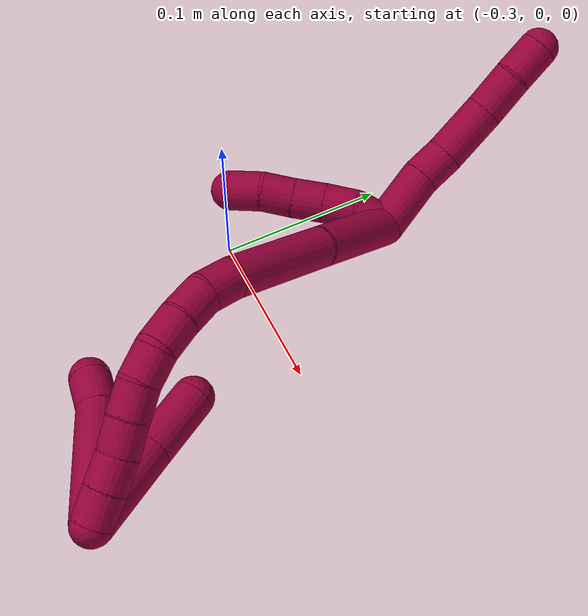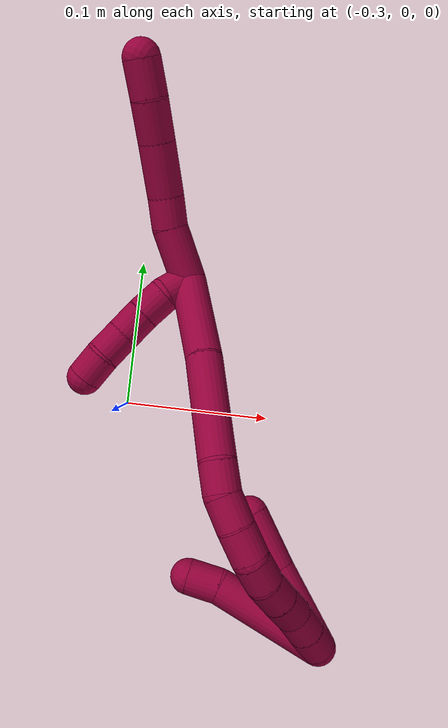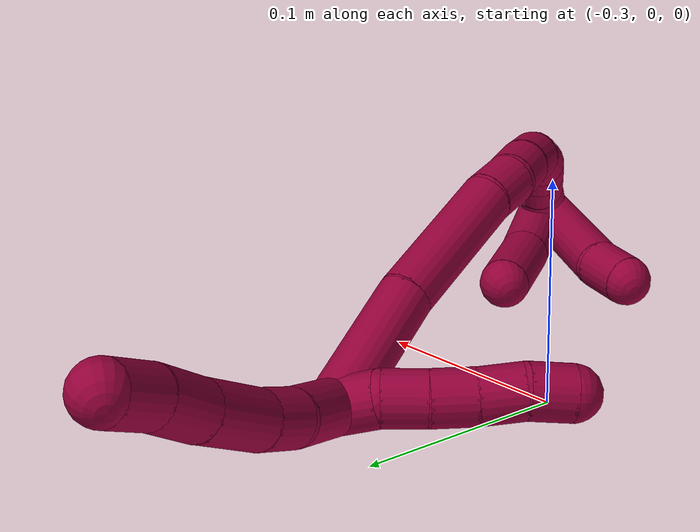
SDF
<sdf version="1.7">
 <world name="default">
  <model name="8">
   <static>0</static>
   <link name="8">
    <collision name="collision-cylinder-e_1_2_8">
     <pose>0.003568 0.014576 0.012643 -0.856297 0.182869 -0.083643</pose>
     <geometry><cylinder><radius>0.0125</radius><length>0.039243</length></cylinder></geometry>
     <surface>
      <friction><ode><mu>1.16</mu><mu2>1.16</mu2><slip1>0</slip1><slip2>0</slip2></ode></friction>
      <contact><ode><kp>1e+06</kp><kd>1</kd><max_vel>0</max_vel><min_depth>0.001</min_depth></ode></contact>
     </surface>
    </collision>
    <visual name="visual-cylinder-e_1_2_8">
     <pose>0.003568 0.014576 0.012643 -0.856297 0.182869 -0.083643</pose>
     <geometry><cylinder><radius>0.0125</radius><length>0.039243</length></cylinder></geometry>
     <material><ambient>0.584314 0 0.227451 1</ambient></material>
    </visual>
    <collision name="collision-cylinder-e_2_8_9">
     <pose>0.008685 0.038349 0.030376 -1.06524 0.146267 -0.086316</pose>
     <geometry><cylinder><radius>0.0125</radius><length>0.021252</length></cylinder></geometry>
     <surface>
      <friction><ode><mu>1.16</mu><mu2>1.16</mu2><slip1>0</slip1><slip2>0</slip2></ode></friction>
      <contact><ode><kp>1e+06</kp><kd>1</kd><max_vel>0</max_vel><min_depth>0.001</min_depth></ode></contact>
     </surface>
    </collision>
    <visual name="visual-cylinder-e_2_8_9">
     <pose>0.008685 0.038349 0.030376 -1.06524 0.146267 -0.086316</pose>
     <geometry><cylinder><radius>0.0125</radius><length>0.021252</length></cylinder></geometry>
     <material><ambient>0.584314 0 0.227451 1</ambient></material>
    </visual>
    <collision name="collision-cylinder-e_3_9_10">
     <pose>0.015387 0.063333 0.043565 -1.09687 0.282665 -0.173419</pose>
     <geometry><cylinder><radius>0.0125</radius><length>0.036952</length></cylinder></geometry>
     <surface>
      <friction><ode><mu>1.16</mu><mu2>1.16</mu2><slip1>0</slip1><slip2>0</slip2></ode></friction>
      <contact><ode><kp>1e+06</kp><kd>1</kd><max_vel>0</max_vel><min_depth>0.001</min_depth></ode></contact>
     </surface>
    </collision>
    <visual name="visual-cylinder-e_3_9_10">
     <pose>0.015387 0.063333 0.043565 -1.09687 0.282665 -0.173419</pose>
     <geometry><cylinder><radius>0.0125</radius><length>0.036952</length></cylinder></geometry>
     <material><ambient>0.584314 0 0.227451 1</ambient></material>
    </visual>
    <collision name="collision-cylinder-e_4_10_11">
     <pose>0.025289 0.090806 0.057279 -1.12274 0.351085 -0.22216</pose>
     <geometry><cylinder><radius>0.0125</radius><length>0.027615</length></cylinder></geometry>
     <surface>
      <friction><ode><mu>1.16</mu><mu2>1.16</mu2><slip1>0</slip1><slip2>0</slip2></ode></friction>
      <contact><ode><kp>1e+06</kp><kd>1</kd><max_vel>0</max_vel><min_depth>0.001</min_depth></ode></contact>
     </surface>
    </collision>
    <visual name="visual-cylinder-e_4_10_11">
     <pose>0.025289 0.090806 0.057279 -1.12274 0.351085 -0.22216</pose>
     <geometry><cylinder><radius>0.0125</radius><length>0.027615</length></cylinder></geometry>
     <material><ambient>0.584314 0 0.227451 1</ambient></material>
    </visual>
    <collision name="collision-cylinder-e_5_11_6">
     <pose>0.033101 0.112972 0.068916 -1.04943 0.248267 -0.144199</pose>
     <geometry><cylinder><radius>0.0125</radius><length>0.024938</length></cylinder></geometry>
     <surface>
      <friction><ode><mu>1.16</mu><mu2>1.16</mu2><slip1>0</slip1><slip2>0</slip2></ode></friction>
      <contact><ode><kp>1e+06</kp><kd>1</kd><max_vel>0</max_vel><min_depth>0.001</min_depth></ode></contact>
     </surface>
    </collision>
    <visual name="visual-cylinder-e_5_11_6">
     <pose>0.033101 0.112972 0.068916 -1.04943 0.248267 -0.144199</pose>
     <geometry><cylinder><radius>0.0125</radius><length>0.024938</length></cylinder></geometry>
     <material><ambient>0.584314 0 0.227451 1</ambient></material>
    </visual>
    <collision name="collision-cylinder-e_1_2_12">
     <pose>0.006393 -0.006673 0.003822 1.05065 0.693588 0.413002</pose>
     <geometry><cylinder><radius>0.0125</radius><length>0.02</length></cylinder></geometry>
     <surface>
      <friction><ode><mu>1.16</mu><mu2>1.16</mu2><slip1>0</slip1><slip2>0</slip2></ode></friction>
      <contact><ode><kp>1e+06</kp><kd>1</kd><max_vel>0</max_vel><min_depth>0.001</min_depth></ode></contact>
     </surface>
    </collision>
    <visual name="visual-cylinder-e_1_2_12">
     <pose>0.006393 -0.006673 0.003822 1.05065 0.693588 0.413002</pose>
     <geometry><cylinder><radius>0.0125</radius><length>0.02</length></cylinder></geometry>
     <material><ambient>0.584314 0 0.227451 1</ambient></material>
    </visual>
    <collision name="collision-cylinder-e_2_12_13">
     <pose>0.01684 -0.021963 0.010692 1.23081 0.417426 0.297272</pose>
     <geometry><cylinder><radius>0.0125</radius><length>0.02</length></cylinder></geometry>
     <surface>
      <friction><ode><mu>1.16</mu><mu2>1.16</mu2><slip1>0</slip1><slip2>0</slip2></ode></friction>
      <contact><ode><kp>1e+06</kp><kd>1</kd><max_vel>0</max_vel><min_depth>0.001</min_depth></ode></contact>
     </surface>
    </collision>
    <visual name="visual-cylinder-e_2_12_13">
     <pose>0.01684 -0.021963 0.010692 1.23081 0.417426 0.297272</pose>
     <geometry><cylinder><radius>0.0125</radius><length>0.02</length></cylinder></geometry>
     <material><ambient>0.584314 0 0.227451 1</ambient></material>
    </visual>
    <collision name="collision-cylinder-e_3_13_14">
     <pose>0.02502 -0.039394 0.016044 1.31509 0.4253 0.330411</pose>
     <geometry><cylinder><radius>0.0125</radius><length>0.02</length></cylinder></geometry>
     <surface>
      <friction><ode><mu>1.16</mu><mu2>1.16</mu2><slip1>0</slip1><slip2>0</slip2></ode></friction>
      <contact><ode><kp>1e+06</kp><kd>1</kd><max_vel>0</max_vel><min_depth>0.001</min_depth></ode></contact>
     </surface>
    </collision>
    <visual name="visual-cylinder-e_3_13_14">
     <pose>0.02502 -0.039394 0.016044 1.31509 0.4253 0.330411</pose>
     <geometry><cylinder><radius>0.0125</radius><length>0.02</length></cylinder></geometry>
     <material><ambient>0.584314 0 0.227451 1</ambient></material>
    </visual>
    <collision name="collision-cylinder-e_4_14_15">
     <pose>0.033971 -0.056719 0.020415 1.33259 0.503472 0.399049</pose>
     <geometry><cylinder><radius>0.0125</radius><length>0.02</length></cylinder></geometry>
     <surface>
      <friction><ode><mu>1.16</mu><mu2>1.16</mu2><slip1>0</slip1><slip2>0</slip2></ode></friction>
      <contact><ode><kp>1e+06</kp><kd>1</kd><max_vel>0</max_vel><min_depth>0.001</min_depth></ode></contact>
     </surface>
    </collision>
    <visual name="visual-cylinder-e_4_14_15">
     <pose>0.033971 -0.056719 0.020415 1.33259 0.503472 0.399049</pose>
     <geometry><cylinder><radius>0.0125</radius><length>0.02</length></cylinder></geometry>
     <material><ambient>0.584314 0 0.227451 1</ambient></material>
    </visual>
    <collision name="collision-cylinder-e_5_15_5">
     <pose>0.041698 -0.07459 0.024476 1.36084 0.294523 0.238969</pose>
     <geometry><cylinder><radius>0.0125</radius><length>0.02</length></cylinder></geometry>
     <surface>
      <friction><ode><mu>1.16</mu><mu2>1.16</mu2><slip1>0</slip1><slip2>0</slip2></ode></friction>
      <contact><ode><kp>1e+06</kp><kd>1</kd><max_vel>0</max_vel><min_depth>0.001</min_depth></ode></contact>
     </surface>
    </collision>
    <visual name="visual-cylinder-e_5_15_5">
     <pose>0.041698 -0.07459 0.024476 1.36084 0.294523 0.238969</pose>
     <geometry><cylinder><radius>0.0125</radius><length>0.02</length></cylinder></geometry>
     <material><ambient>0.584314 0 0.227451 1</ambient></material>
    </visual>
    <collision name="collision-cylinder-e_1_2_16">
     <pose>0.017366 -0.015943 -0.021833 2.51088 0.570976 1.46525</pose>
     <geometry><cylinder><radius>0.0125</radius><length>0.064263</length></cylinder></geometry>
     <surface>
      <friction><ode><mu>1.16</mu><mu2>1.16</mu2><slip1>0</slip1><slip2>0</slip2></ode></friction>
      <contact><ode><kp>1e+06</kp><kd>1</kd><max_vel>0</max_vel><min_depth>0.001</min_depth></ode></contact>
     </surface>
    </collision>
    <visual name="visual-cylinder-e_1_2_16">
     <pose>0.017366 -0.015943 -0.021833 2.51088 0.570976 1.46525</pose>
     <geometry><cylinder><radius>0.0125</radius><length>0.064263</length></cylinder></geometry>
     <material><ambient>0.584314 0 0.227451 1</ambient></material>
    </visual>
    <collision name="collision-cylinder-e_2_16_17">
     <pose>0.052394 -0.052902 -0.06638 2.39497 0.518666 1.19074</pose>
     <geometry><cylinder><radius>0.0125</radius><length>0.071261</length></cylinder></geometry>
     <surface>
      <friction><ode><mu>1.16</mu><mu2>1.16</mu2><slip1>0</slip1><slip2>0</slip2></ode></friction>
      <contact><ode><kp>1e+06</kp><kd>1</kd><max_vel>0</max_vel><min_depth>0.001</min_depth></ode></contact>
     </surface>
    </collision>
    <visual name="visual-cylinder-e_2_16_17">
     <pose>0.052394 -0.052902 -0.06638 2.39497 0.518666 1.19074</pose>
     <geometry><cylinder><radius>0.0125</radius><length>0.071261</length></cylinder></geometry>
     <material><ambient>0.584314 0 0.227451 1</ambient></material>
    </visual>
    <collision name="collision-cylinder-e_3_17_18">
     <pose>0.073497 -0.081169 -0.095827 2.31927 0.334594 0.739047</pose>
     <geometry><cylinder><radius>0.0125</radius><length>0.020953</length></cylinder></geometry>
     <surface>
      <friction><ode><mu>1.16</mu><mu2>1.16</mu2><slip1>0</slip1><slip2>0</slip2></ode></friction>
      <contact><ode><kp>1e+06</kp><kd>1</kd><max_vel>0</max_vel><min_depth>0.001</min_depth></ode></contact>
     </surface>
    </collision>
    <visual name="visual-cylinder-e_3_17_18">
     <pose>0.073497 -0.081169 -0.095827 2.31927 0.334594 0.739047</pose>
     <geometry><cylinder><radius>0.0125</radius><length>0.020953</length></cylinder></geometry>
     <material><ambient>0.584314 0 0.227451 1</ambient></material>
    </visual>
    <collision name="collision-cylinder-e_4_18_19">
     <pose>0.077966 -0.095097 -0.111096 2.47776 0.094621 0.273025</pose>
     <geometry><cylinder><radius>0.0125</radius><length>0.021771</length></cylinder></geometry>
     <surface>
      <friction><ode><mu>1.16</mu><mu2>1.16</mu2><slip1>0</slip1><slip2>0</slip2></ode></friction>
      <contact><ode><kp>1e+06</kp><kd>1</kd><max_vel>0</max_vel><min_depth>0.001</min_depth></ode></contact>
     </surface>
    </collision>
    <visual name="visual-cylinder-e_4_18_19">
     <pose>0.077966 -0.095097 -0.111096 2.47776 0.094621 0.273025</pose>
     <geometry><cylinder><radius>0.0125</radius><length>0.021771</length></cylinder></geometry>
     <material><ambient>0.584314 0 0.227451 1</ambient></material>
    </visual>
    <collision name="collision-cylinder-e_5_19_20">
     <pose>0.078621 -0.108554 -0.127986 2.45981 -0.034731 -0.097839</pose>
     <geometry><cylinder><radius>0.0125</radius><length>0.021532</length></cylinder></geometry>
     <surface>
      <friction><ode><mu>1.16</mu><mu2>1.16</mu2><slip1>0</slip1><slip2>0</slip2></ode></friction>
      <contact><ode><kp>1e+06</kp><kd>1</kd><max_vel>0</max_vel><min_depth>0.001</min_depth></ode></contact>
     </surface>
    </collision>
    <visual name="visual-cylinder-e_5_19_20">
     <pose>0.078621 -0.108554 -0.127986 2.45981 -0.034731 -0.097839</pose>
     <geometry><cylinder><radius>0.0125</radius><length>0.021532</length></cylinder></geometry>
     <material><ambient>0.584314 0 0.227451 1</ambient></material>
    </visual>
    <collision name="collision-cylinder-e_6_20_21">
     <pose>0.074669 -0.12191 -0.143009 2.36327 -0.364908 -0.845596</pose>
     <geometry><cylinder><radius>0.0125</radius><length>0.02005</length></cylinder></geometry>
     <surface>
      <friction><ode><mu>1.16</mu><mu2>1.16</mu2><slip1>0</slip1><slip2>0</slip2></ode></friction>
      <contact><ode><kp>1e+06</kp><kd>1</kd><max_vel>0</max_vel><min_depth>0.001</min_depth></ode></contact>
     </surface>
    </collision>
    <visual name="visual-cylinder-e_6_20_21">
     <pose>0.074669 -0.12191 -0.143009 2.36327 -0.364908 -0.845596</pose>
     <geometry><cylinder><radius>0.0125</radius><length>0.02005</length></cylinder></geometry>
     <material><ambient>0.584314 0 0.227451 1</ambient></material>
    </visual>
    <collision name="collision-cylinder-e_7_21_22">
     <pose>0.065664 -0.134111 -0.155958 2.41101 -0.571952 -1.31087</pose>
     <geometry><cylinder><radius>0.0125</radius><length>0.020056</length></cylinder></geometry>
     <surface>
      <friction><ode><mu>1.16</mu><mu2>1.16</mu2><slip1>0</slip1><slip2>0</slip2></ode></friction>
      <contact><ode><kp>1e+06</kp><kd>1</kd><max_vel>0</max_vel><min_depth>0.001</min_depth></ode></contact>
     </surface>
    </collision>
    <visual name="visual-cylinder-e_7_21_22">
     <pose>0.065664 -0.134111 -0.155958 2.41101 -0.571952 -1.31087</pose>
     <geometry><cylinder><radius>0.0125</radius><length>0.020056</length></cylinder></geometry>
     <material><ambient>0.584314 0 0.227451 1</ambient></material>
    </visual>
    <collision name="collision-cylinder-e_8_22_23">
     <pose>0.054316 -0.145256 -0.1682 2.39488 -0.629716 -1.38723</pose>
     <geometry><cylinder><radius>0.0125</radius><length>0.020104</length></cylinder></geometry>
     <surface>
      <friction><ode><mu>1.16</mu><mu2>1.16</mu2><slip1>0</slip1><slip2>0</slip2></ode></friction>
      <contact><ode><kp>1e+06</kp><kd>1</kd><max_vel>0</max_vel><min_depth>0.001</min_depth></ode></contact>
     </surface>
    </collision>
    <visual name="visual-cylinder-e_8_22_23">
     <pose>0.054316 -0.145256 -0.1682 2.39488 -0.629716 -1.38723</pose>
     <geometry><cylinder><radius>0.0125</radius><length>0.020104</length></cylinder></geometry>
     <material><ambient>0.584314 0 0.227451 1</ambient></material>
    </visual>
    <collision name="collision-cylinder-e_9_23_24">
     <pose>0.043428 -0.156774 -0.18044 2.37879 -0.519708 -1.17084</pose>
     <geometry><cylinder><radius>0.0125</radius><length>0.020009</length></cylinder></geometry>
     <surface>
      <friction><ode><mu>1.16</mu><mu2>1.16</mu2><slip1>0</slip1><slip2>0</slip2></ode></friction>
      <contact><ode><kp>1e+06</kp><kd>1</kd><max_vel>0</max_vel><min_depth>0.001</min_depth></ode></contact>
     </surface>
    </collision>
    <visual name="visual-cylinder-e_9_23_24">
     <pose>0.043428 -0.156774 -0.18044 2.37879 -0.519708 -1.17084</pose>
     <geometry><cylinder><radius>0.0125</radius><length>0.020009</length></cylinder></geometry>
     <material><ambient>0.584314 0 0.227451 1</ambient></material>
    </visual>
    <collision name="collision-cylinder-e_10_24_1">
     <pose>0.033372 -0.16886 -0.192807 2.35656 -0.533633 -1.16706</pose>
     <geometry><cylinder><radius>0.0125</radius><length>0.020001</length></cylinder></geometry>
     <surface>
      <friction><ode><mu>1.16</mu><mu2>1.16</mu2><slip1>0</slip1><slip2>0</slip2></ode></friction>
      <contact><ode><kp>1e+06</kp><kd>1</kd><max_vel>0</max_vel><min_depth>0.001</min_depth></ode></contact>
     </surface>
    </collision>
    <visual name="visual-cylinder-e_10_24_1">
     <pose>0.033372 -0.16886 -0.192807 2.35656 -0.533633 -1.16706</pose>
     <geometry><cylinder><radius>0.0125</radius><length>0.020001</length></cylinder></geometry>
     <material><ambient>0.584314 0 0.227451 1</ambient></material>
    </visual>
    <collision name="collision-cylinder-e_1_1_25">
     <pose>0.024291 -0.160256 -0.174252 -0.537502 -0.13835 0.03816</pose>
     <geometry><cylinder><radius>0.0125</radius><length>0.057936</length></cylinder></geometry>
     <surface>
      <friction><ode><mu>1.16</mu><mu2>1.16</mu2><slip1>0</slip1><slip2>0</slip2></ode></friction>
      <contact><ode><kp>1e+06</kp><kd>1</kd><max_vel>0</max_vel><min_depth>0.001</min_depth></ode></contact>
     </surface>
    </collision>
    <visual name="visual-cylinder-e_1_1_25">
     <pose>0.024291 -0.160256 -0.174252 -0.537502 -0.13835 0.03816</pose>
     <geometry><cylinder><radius>0.0125</radius><length>0.057936</length></cylinder></geometry>
     <material><ambient>0.584314 0 0.227451 1</ambient></material>
    </visual>
    <collision name="collision-cylinder-e_2_25_4">
     <pose>0.018772 -0.133379 -0.132534 -0.619971 -0.072514 0.023236</pose>
     <geometry><cylinder><radius>0.0125</radius><length>0.042064</length></cylinder></geometry>
     <surface>
      <friction><ode><mu>1.16</mu><mu2>1.16</mu2><slip1>0</slip1><slip2>0</slip2></ode></friction>
      <contact><ode><kp>1e+06</kp><kd>1</kd><max_vel>0</max_vel><min_depth>0.001</min_depth></ode></contact>
     </surface>
    </collision>
    <visual name="visual-cylinder-e_2_25_4">
     <pose>0.018772 -0.133379 -0.132534 -0.619971 -0.072514 0.023236</pose>
     <geometry><cylinder><radius>0.0125</radius><length>0.042064</length></cylinder></geometry>
     <material><ambient>0.584314 0 0.227451 1</ambient></material>
    </visual>
    <collision name="collision-cylinder-e_1_1_26">
     <pose>0.032723 -0.173178 -0.160475 -0.04597 0.114866 -0.002644</pose>
     <geometry><cylinder><radius>0.0125</radius><length>0.077436</length></cylinder></geometry>
     <surface>
      <friction><ode><mu>1.16</mu><mu2>1.16</mu2><slip1>0</slip1><slip2>0</slip2></ode></friction>
      <contact><ode><kp>1e+06</kp><kd>1</kd><max_vel>0</max_vel><min_depth>0.001</min_depth></ode></contact>
     </surface>
    </collision>
    <visual name="visual-cylinder-e_1_1_26">
     <pose>0.032723 -0.173178 -0.160475 -0.04597 0.114866 -0.002644</pose>
     <geometry><cylinder><radius>0.0125</radius><length>0.077436</length></cylinder></geometry>
     <material><ambient>0.584314 0 0.227451 1</ambient></material>
    </visual>
    <collision name="collision-cylinder-e_2_26_3">
     <pose>0.039505 -0.173366 -0.111192 0.178085 0.209286 0.018753</pose>
     <geometry><cylinder><radius>0.0125</radius><length>0.022564</length></cylinder></geometry>
     <surface>
      <friction><ode><mu>1.16</mu><mu2>1.16</mu2><slip1>0</slip1><slip2>0</slip2></ode></friction>
      <contact><ode><kp>1e+06</kp><kd>1</kd><max_vel>0</max_vel><min_depth>0.001</min_depth></ode></contact>
     </surface>
    </collision>
    <visual name="visual-cylinder-e_2_26_3">
     <pose>0.039505 -0.173366 -0.111192 0.178085 0.209286 0.018753</pose>
     <geometry><cylinder><radius>0.0125</radius><length>0.022564</length></cylinder></geometry>
     <material><ambient>0.584314 0 0.227451 1</ambient></material>
    </visual>
    <collision name="collision-sphere-3">
     <pose>0.041849 -0.175321 -0.100331 0 -0 0</pose>
     <geometry><sphere><radius>0.0125</radius></sphere></geometry>
     <surface>
      <friction><ode><mu>1.16</mu><mu2>1.16</mu2><slip1>0</slip1><slip2>0</slip2></ode></friction>
      <contact><ode><kp>1e+06</kp><kd>1</kd><max_vel>0</max_vel><min_depth>0.001</min_depth></ode></contact>
     </surface>
    </collision>
    <visual name="visual-sphere-3">
     <pose>0.041849 -0.175321 -0.100331 0 -0 0</pose>
     <geometry><sphere><radius>0.0125</radius></sphere></geometry>
     <material><ambient>0.584314 0 0.227451 1</ambient></material>
    </visual>
    <collision name="collision-sphere-26">
     <pose>0.037161 -0.171411 -0.122053 0 -0 0</pose>
     <geometry><sphere><radius>0.0125</radius></sphere></geometry>
     <surface>
      <friction><ode><mu>1.16</mu><mu2>1.16</mu2><slip1>0</slip1><slip2>0</slip2></ode></friction>
      <contact><ode><kp>1e+06</kp><kd>1</kd><max_vel>0</max_vel><min_depth>0.001</min_depth></ode></contact>
     </surface>
    </collision>
    <visual name="visual-sphere-26">
     <pose>0.037161 -0.171411 -0.122053 0 -0 0</pose>
     <geometry><sphere><radius>0.0125</radius></sphere></geometry>
     <material><ambient>0.584314 0 0.227451 1</ambient></material>
    </visual>
    <collision name="collision-sphere-4">
     <pose>0.017248 -0.121191 -0.115461 0 -0 0</pose>
     <geometry><sphere><radius>0.0125</radius></sphere></geometry>
     <surface>
      <friction><ode><mu>1.16</mu><mu2>1.16</mu2><slip1>0</slip1><slip2>0</slip2></ode></friction>
      <contact><ode><kp>1e+06</kp><kd>1</kd><max_vel>0</max_vel><min_depth>0.001</min_depth></ode></contact>
     </surface>
    </collision>
    <visual name="visual-sphere-4">
     <pose>0.017248 -0.121191 -0.115461 0 -0 0</pose>
     <geometry><sphere><radius>0.0125</radius></sphere></geometry>
     <material><ambient>0.584314 0 0.227451 1</ambient></material>
    </visual>
    <collision name="collision-sphere-25">
     <pose>0.020296 -0.145566 -0.149607 0 -0 0</pose>
     <geometry><sphere><radius>0.0125</radius></sphere></geometry>
     <surface>
      <friction><ode><mu>1.16</mu><mu2>1.16</mu2><slip1>0</slip1><slip2>0</slip2></ode></friction>
      <contact><ode><kp>1e+06</kp><kd>1</kd><max_vel>0</max_vel><min_depth>0.001</min_depth></ode></contact>
     </surface>
    </collision>
    <visual name="visual-sphere-25">
     <pose>0.020296 -0.145566 -0.149607 0 -0 0</pose>
     <geometry><sphere><radius>0.0125</radius></sphere></geometry>
     <material><ambient>0.584314 0 0.227451 1</ambient></material>
    </visual>
    <collision name="collision-sphere-1">
     <pose>0.028286 -0.174946 -0.198898 0 -0 0</pose>
     <geometry><sphere><radius>0.0125</radius></sphere></geometry>
     <surface>
      <friction><ode><mu>1.16</mu><mu2>1.16</mu2><slip1>0</slip1><slip2>0</slip2></ode></friction>
      <contact><ode><kp>1e+06</kp><kd>1</kd><max_vel>0</max_vel><min_depth>0.001</min_depth></ode></contact>
     </surface>
    </collision>
    <visual name="visual-sphere-1">
     <pose>0.028286 -0.174946 -0.198898 0 -0 0</pose>
     <geometry><sphere><radius>0.0125</radius></sphere></geometry>
     <material><ambient>0.584314 0 0.227451 1</ambient></material>
    </visual>
    <collision name="collision-sphere-24">
     <pose>0.038459 -0.162774 -0.186717 0 -0 0</pose>
     <geometry><sphere><radius>0.0125</radius></sphere></geometry>
     <surface>
      <friction><ode><mu>1.16</mu><mu2>1.16</mu2><slip1>0</slip1><slip2>0</slip2></ode></friction>
      <contact><ode><kp>1e+06</kp><kd>1</kd><max_vel>0</max_vel><min_depth>0.001</min_depth></ode></contact>
     </surface>
    </collision>
    <visual name="visual-sphere-24">
     <pose>0.038459 -0.162774 -0.186717 0 -0 0</pose>
     <geometry><sphere><radius>0.0125</radius></sphere></geometry>
     <material><ambient>0.584314 0 0.227451 1</ambient></material>
    </visual>
    <collision name="collision-sphere-23">
     <pose>0.048396 -0.150774 -0.174163 0 -0 0</pose>
     <geometry><sphere><radius>0.0125</radius></sphere></geometry>
     <surface>
      <friction><ode><mu>1.16</mu><mu2>1.16</mu2><slip1>0</slip1><slip2>0</slip2></ode></friction>
      <contact><ode><kp>1e+06</kp><kd>1</kd><max_vel>0</max_vel><min_depth>0.001</min_depth></ode></contact>
     </surface>
    </collision>
    <visual name="visual-sphere-23">
     <pose>0.048396 -0.150774 -0.174163 0 -0 0</pose>
     <geometry><sphere><radius>0.0125</radius></sphere></geometry>
     <material><ambient>0.584314 0 0.227451 1</ambient></material>
    </visual>
    <collision name="collision-sphere-22">
     <pose>0.060236 -0.139738 -0.162238 0 -0 0</pose>
     <geometry><sphere><radius>0.0125</radius></sphere></geometry>
     <surface>
      <friction><ode><mu>1.16</mu><mu2>1.16</mu2><slip1>0</slip1><slip2>0</slip2></ode></friction>
      <contact><ode><kp>1e+06</kp><kd>1</kd><max_vel>0</max_vel><min_depth>0.001</min_depth></ode></contact>
     </surface>
    </collision>
    <visual name="visual-sphere-22">
     <pose>0.060236 -0.139738 -0.162238 0 -0 0</pose>
     <geometry><sphere><radius>0.0125</radius></sphere></geometry>
     <material><ambient>0.584314 0 0.227451 1</ambient></material>
    </visual>
    <collision name="collision-sphere-21">
     <pose>0.071092 -0.128485 -0.149677 0 -0 0</pose>
     <geometry><sphere><radius>0.0125</radius></sphere></geometry>
     <surface>
      <friction><ode><mu>1.16</mu><mu2>1.16</mu2><slip1>0</slip1><slip2>0</slip2></ode></friction>
      <contact><ode><kp>1e+06</kp><kd>1</kd><max_vel>0</max_vel><min_depth>0.001</min_depth></ode></contact>
     </surface>
    </collision>
    <visual name="visual-sphere-21">
     <pose>0.071092 -0.128485 -0.149677 0 -0 0</pose>
     <geometry><sphere><radius>0.0125</radius></sphere></geometry>
     <material><ambient>0.584314 0 0.227451 1</ambient></material>
    </visual>
    <collision name="collision-sphere-6">
     <pose>0.036165 0.123453 0.074936 0 -0 0</pose>
     <geometry><sphere><radius>0.0125</radius></sphere></geometry>
     <surface>
      <friction><ode><mu>1.16</mu><mu2>1.16</mu2><slip1>0</slip1><slip2>0</slip2></ode></friction>
      <contact><ode><kp>1e+06</kp><kd>1</kd><max_vel>0</max_vel><min_depth>0.001</min_depth></ode></contact>
     </surface>
    </collision>
    <visual name="visual-sphere-6">
     <pose>0.036165 0.123453 0.074936 0 -0 0</pose>
     <geometry><sphere><radius>0.0125</radius></sphere></geometry>
     <material><ambient>0.584314 0 0.227451 1</ambient></material>
    </visual>
    <collision name="collision-sphere-11">
     <pose>0.030037 0.102491 0.062896 0 -0 0</pose>
     <geometry><sphere><radius>0.0125</radius></sphere></geometry>
     <surface>
      <friction><ode><mu>1.16</mu><mu2>1.16</mu2><slip1>0</slip1><slip2>0</slip2></ode></friction>
      <contact><ode><kp>1e+06</kp><kd>1</kd><max_vel>0</max_vel><min_depth>0.001</min_depth></ode></contact>
     </surface>
    </collision>
    <visual name="visual-sphere-11">
     <pose>0.030037 0.102491 0.062896 0 -0 0</pose>
     <geometry><sphere><radius>0.0125</radius></sphere></geometry>
     <material><ambient>0.584314 0 0.227451 1</ambient></material>
    </visual>
    <collision name="collision-sphere-10">
     <pose>0.02054 0.079121 0.051662 0 -0 0</pose>
     <geometry><sphere><radius>0.0125</radius></sphere></geometry>
     <surface>
      <friction><ode><mu>1.16</mu><mu2>1.16</mu2><slip1>0</slip1><slip2>0</slip2></ode></friction>
      <contact><ode><kp>1e+06</kp><kd>1</kd><max_vel>0</max_vel><min_depth>0.001</min_depth></ode></contact>
     </surface>
    </collision>
    <visual name="visual-sphere-10">
     <pose>0.02054 0.079121 0.051662 0 -0 0</pose>
     <geometry><sphere><radius>0.0125</radius></sphere></geometry>
     <material><ambient>0.584314 0 0.227451 1</ambient></material>
    </visual>
    <collision name="collision-sphere-9">
     <pose>0.010234 0.047546 0.035468 0 -0 0</pose>
     <geometry><sphere><radius>0.0125</radius></sphere></geometry>
     <surface>
      <friction><ode><mu>1.16</mu><mu2>1.16</mu2><slip1>0</slip1><slip2>0</slip2></ode></friction>
      <contact><ode><kp>1e+06</kp><kd>1</kd><max_vel>0</max_vel><min_depth>0.001</min_depth></ode></contact>
     </surface>
    </collision>
    <visual name="visual-sphere-9">
     <pose>0.010234 0.047546 0.035468 0 -0 0</pose>
     <geometry><sphere><radius>0.0125</radius></sphere></geometry>
     <material><ambient>0.584314 0 0.227451 1</ambient></material>
    </visual>
    <collision name="collision-sphere-2">
     <geometry><sphere><radius>0.0125</radius></sphere></geometry>
     <surface>
      <friction><ode><mu>1.16</mu><mu2>1.16</mu2><slip1>0</slip1><slip2>0</slip2></ode></friction>
      <contact><ode><kp>1e+06</kp><kd>1</kd><max_vel>0</max_vel><min_depth>0.001</min_depth></ode></contact>
     </surface>
    </collision>
    <visual name="visual-sphere-2">
     <geometry><sphere><radius>0.0125</radius></sphere></geometry>
     <material><ambient>0.584314 0 0.227451 1</ambient></material>
    </visual>
    <collision name="collision-sphere-19">
     <pose>0.078995 -0.101774 -0.119631 0 -0 0</pose>
     <geometry><sphere><radius>0.0125</radius></sphere></geometry>
     <surface>
      <friction><ode><mu>1.16</mu><mu2>1.16</mu2><slip1>0</slip1><slip2>0</slip2></ode></friction>
      <contact><ode><kp>1e+06</kp><kd>1</kd><max_vel>0</max_vel><min_depth>0.001</min_depth></ode></contact>
     </surface>
    </collision>
    <visual name="visual-sphere-19">
     <pose>0.078995 -0.101774 -0.119631 0 -0 0</pose>
     <geometry><sphere><radius>0.0125</radius></sphere></geometry>
     <material><ambient>0.584314 0 0.227451 1</ambient></material>
    </visual>
    <collision name="collision-sphere-8">
     <pose>0.007136 0.029151 0.025285 0 -0 0</pose>
     <geometry><sphere><radius>0.0125</radius></sphere></geometry>
     <surface>
      <friction><ode><mu>1.16</mu><mu2>1.16</mu2><slip1>0</slip1><slip2>0</slip2></ode></friction>
      <contact><ode><kp>1e+06</kp><kd>1</kd><max_vel>0</max_vel><min_depth>0.001</min_depth></ode></contact>
     </surface>
    </collision>
    <visual name="visual-sphere-8">
     <pose>0.007136 0.029151 0.025285 0 -0 0</pose>
     <geometry><sphere><radius>0.0125</radius></sphere></geometry>
     <material><ambient>0.584314 0 0.227451 1</ambient></material>
    </visual>
    <collision name="collision-sphere-12">
     <pose>0.012786 -0.013345 0.007644 0 -0 0</pose>
     <geometry><sphere><radius>0.0125</radius></sphere></geometry>
     <surface>
      <friction><ode><mu>1.16</mu><mu2>1.16</mu2><slip1>0</slip1><slip2>0</slip2></ode></friction>
      <contact><ode><kp>1e+06</kp><kd>1</kd><max_vel>0</max_vel><min_depth>0.001</min_depth></ode></contact>
     </surface>
    </collision>
    <visual name="visual-sphere-12">
     <pose>0.012786 -0.013345 0.007644 0 -0 0</pose>
     <geometry><sphere><radius>0.0125</radius></sphere></geometry>
     <material><ambient>0.584314 0 0.227451 1</ambient></material>
    </visual>
    <collision name="collision-sphere-13">
     <pose>0.020894 -0.030581 0.01374 0 -0 0</pose>
     <geometry><sphere><radius>0.0125</radius></sphere></geometry>
     <surface>
      <friction><ode><mu>1.16</mu><mu2>1.16</mu2><slip1>0</slip1><slip2>0</slip2></ode></friction>
      <contact><ode><kp>1e+06</kp><kd>1</kd><max_vel>0</max_vel><min_depth>0.001</min_depth></ode></contact>
     </surface>
    </collision>
    <visual name="visual-sphere-13">
     <pose>0.020894 -0.030581 0.01374 0 -0 0</pose>
     <geometry><sphere><radius>0.0125</radius></sphere></geometry>
     <material><ambient>0.584314 0 0.227451 1</ambient></material>
    </visual>
    <collision name="collision-sphere-14">
     <pose>0.029146 -0.048207 0.018348 0 -0 0</pose>
     <geometry><sphere><radius>0.0125</radius></sphere></geometry>
     <surface>
      <friction><ode><mu>1.16</mu><mu2>1.16</mu2><slip1>0</slip1><slip2>0</slip2></ode></friction>
      <contact><ode><kp>1e+06</kp><kd>1</kd><max_vel>0</max_vel><min_depth>0.001</min_depth></ode></contact>
     </surface>
    </collision>
    <visual name="visual-sphere-14">
     <pose>0.029146 -0.048207 0.018348 0 -0 0</pose>
     <geometry><sphere><radius>0.0125</radius></sphere></geometry>
     <material><ambient>0.584314 0 0.227451 1</ambient></material>
    </visual>
    <collision name="collision-sphere-15">
     <pose>0.038795 -0.065231 0.022482 0 -0 0</pose>
     <geometry><sphere><radius>0.0125</radius></sphere></geometry>
     <surface>
      <friction><ode><mu>1.16</mu><mu2>1.16</mu2><slip1>0</slip1><slip2>0</slip2></ode></friction>
      <contact><ode><kp>1e+06</kp><kd>1</kd><max_vel>0</max_vel><min_depth>0.001</min_depth></ode></contact>
     </surface>
    </collision>
    <visual name="visual-sphere-15">
     <pose>0.038795 -0.065231 0.022482 0 -0 0</pose>
     <geometry><sphere><radius>0.0125</radius></sphere></geometry>
     <material><ambient>0.584314 0 0.227451 1</ambient></material>
    </visual>
    <collision name="collision-sphere-5">
     <pose>0.044601 -0.083949 0.026471 0 -0 0</pose>
     <geometry><sphere><radius>0.0125</radius></sphere></geometry>
     <surface>
      <friction><ode><mu>1.16</mu><mu2>1.16</mu2><slip1>0</slip1><slip2>0</slip2></ode></friction>
      <contact><ode><kp>1e+06</kp><kd>1</kd><max_vel>0</max_vel><min_depth>0.001</min_depth></ode></contact>
     </surface>
    </collision>
    <visual name="visual-sphere-5">
     <pose>0.044601 -0.083949 0.026471 0 -0 0</pose>
     <geometry><sphere><radius>0.0125</radius></sphere></geometry>
     <material><ambient>0.584314 0 0.227451 1</ambient></material>
    </visual>
    <collision name="collision-sphere-16">
     <pose>0.034731 -0.031886 -0.043667 0 -0 0</pose>
     <geometry><sphere><radius>0.0125</radius></sphere></geometry>
     <surface>
      <friction><ode><mu>1.16</mu><mu2>1.16</mu2><slip1>0</slip1><slip2>0</slip2></ode></friction>
      <contact><ode><kp>1e+06</kp><kd>1</kd><max_vel>0</max_vel><min_depth>0.001</min_depth></ode></contact>
     </surface>
    </collision>
    <visual name="visual-sphere-16">
     <pose>0.034731 -0.031886 -0.043667 0 -0 0</pose>
     <geometry><sphere><radius>0.0125</radius></sphere></geometry>
     <material><ambient>0.584314 0 0.227451 1</ambient></material>
    </visual>
    <collision name="collision-sphere-17">
     <pose>0.070057 -0.073918 -0.089092 0 -0 0</pose>
     <geometry><sphere><radius>0.0125</radius></sphere></geometry>
     <surface>
      <friction><ode><mu>1.16</mu><mu2>1.16</mu2><slip1>0</slip1><slip2>0</slip2></ode></friction>
      <contact><ode><kp>1e+06</kp><kd>1</kd><max_vel>0</max_vel><min_depth>0.001</min_depth></ode></contact>
     </surface>
    </collision>
    <visual name="visual-sphere-17">
     <pose>0.070057 -0.073918 -0.089092 0 -0 0</pose>
     <geometry><sphere><radius>0.0125</radius></sphere></geometry>
     <material><ambient>0.584314 0 0.227451 1</ambient></material>
    </visual>
    <collision name="collision-sphere-18">
     <pose>0.076938 -0.08842 -0.102561 0 -0 0</pose>
     <geometry><sphere><radius>0.0125</radius></sphere></geometry>
     <surface>
      <friction><ode><mu>1.16</mu><mu2>1.16</mu2><slip1>0</slip1><slip2>0</slip2></ode></friction>
      <contact><ode><kp>1e+06</kp><kd>1</kd><max_vel>0</max_vel><min_depth>0.001</min_depth></ode></contact>
     </surface>
    </collision>
    <visual name="visual-sphere-18">
     <pose>0.076938 -0.08842 -0.102561 0 -0 0</pose>
     <geometry><sphere><radius>0.0125</radius></sphere></geometry>
     <material><ambient>0.584314 0 0.227451 1</ambient></material>
    </visual>
    <collision name="collision-sphere-20">
     <pose>0.078247 -0.115335 -0.13634 0 -0 0</pose>
     <geometry><sphere><radius>0.0125</radius></sphere></geometry>
     <surface>
      <friction><ode><mu>1.16</mu><mu2>1.16</mu2><slip1>0</slip1><slip2>0</slip2></ode></friction>
      <contact><ode><kp>1e+06</kp><kd>1</kd><max_vel>0</max_vel><min_depth>0.001</min_depth></ode></contact>
     </surface>
    </collision>
    <visual name="visual-sphere-20">
     <pose>0.078247 -0.115335 -0.13634 0 -0 0</pose>
     <geometry><sphere><radius>0.0125</radius></sphere></geometry>
     <material><ambient>0.584314 0 0.227451 1</ambient></material>
    </visual>
    <inertial>
     <pose>0.03432 -0.070164 -0.070939 0 -0 0</pose>
     <mass>0.75</mass>
     <inertia>
      <ixx>0.000165</ixx>
      <ixy>0</ixy>
      <ixz>0</ixz>
      <iyy>0.00012</iyy>
      <iyz>0</iyz>
      <izz>-1.6e-05</izz>
     </inertia>
    </inertial>
   </link>
   <pose>-0.266371 0.090766 0.01261 2.22081 -1.13215 -2.57928</pose>
  </model>
 </world>
</sdf>
